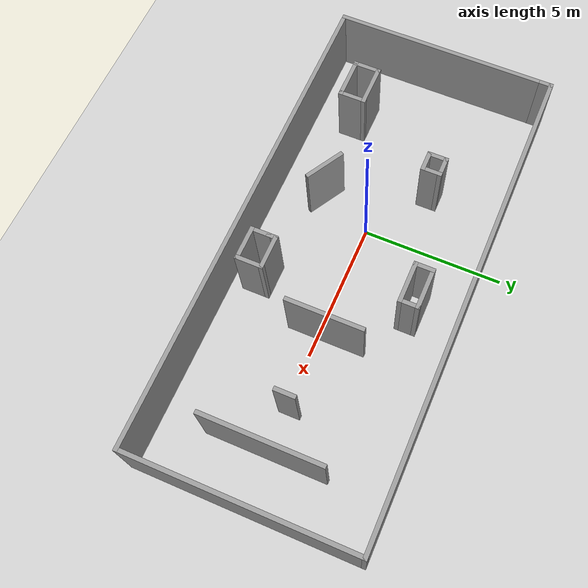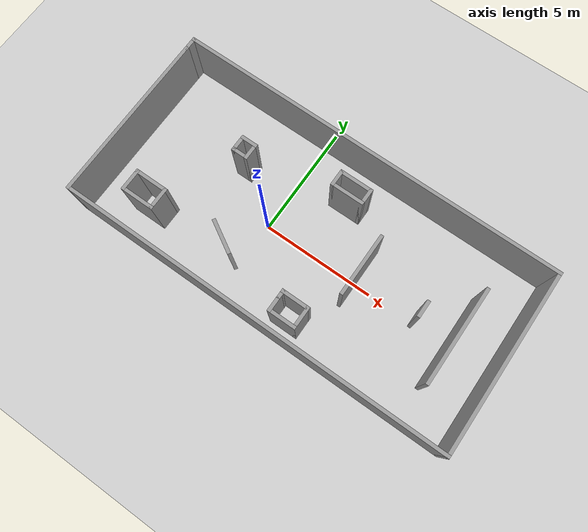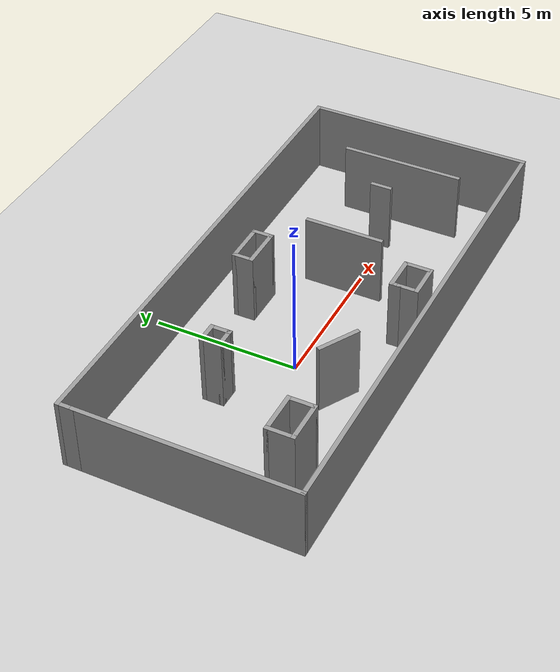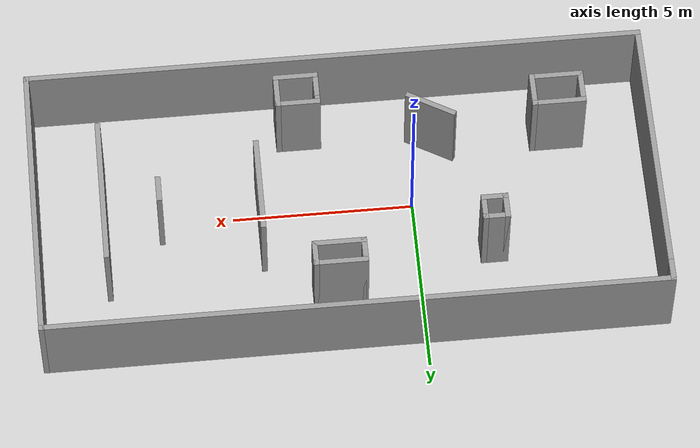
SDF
<?xml version="1.0" ?>
<sdf version="1.5">
  <world name="default">
    <!-- A global light source -->
    <include>
      <uri>model://sun</uri>
    </include>
    <!-- A ground plane -->
    <include>
      <uri>model://ground_plane</uri>
    </include>

    <physics type="ode">
      <!-- This will cap realtime factor to 0.8 -->
      <real_time_update_rate>500</real_time_update_rate>
    </physics>

    <model name='test_world'>
      <pose frame=''>1.89581 0.315639 0 0 -0 0</pose>
      <link name='Wall_11'>
        <collision name='Wall_11_Collision'>
          <geometry>
            <box>
              <size>7.5 0.15 2.5</size>
            </box>
          </geometry>
          <pose frame=''>0 0 1.25 0 -0 0</pose>
        </collision>
        <visual name='Wall_11_Visual'>
          <pose frame=''>0 0 1.25 0 -0 0</pose>
          <geometry>
            <box>
              <size>7.5 0.15 2.5</size>
            </box>
          </geometry>
          <material>
            <script>
              <uri>file://media/materials/scripts/gazebo.material</uri>
              <name>Gazebo/Grey</name>
            </script>
            <ambient>1 1 1 1</ambient>
          </material>
          <meta>
            <layer>0</layer>
          </meta>
        </visual>
        <pose frame=''>-8.55 -0.25 0 0 -0 -1.5708</pose>
      </link>
      <link name='Wall_12'>
        <collision name='Wall_12_Collision'>
          <geometry>
            <box>
              <size>17.25 0.15 2.5</size>
            </box>
          </geometry>
          <pose frame=''>0 0 1.25 0 -0 0</pose>
        </collision>
        <visual name='Wall_12_Visual'>
          <pose frame=''>0 0 1.25 0 -0 0</pose>
          <geometry>
            <box>
              <size>17.25 0.15 2.5</size>
            </box>
          </geometry>
          <material>
            <script>
              <uri>file://media/materials/scripts/gazebo.material</uri>
              <name>Gazebo/Grey</name>
            </script>
            <ambient>1 1 1 1</ambient>
          </material>
          <meta>
            <layer>0</layer>
          </meta>
        </visual>
        <pose frame=''>-0 -3.925 0 0 -0 0</pose>
      </link>
      <link name='Wall_13'>
        <collision name='Wall_13_Collision'>
          <geometry>
            <box>
              <size>8 0.15 2.5</size>
            </box>
          </geometry>
          <pose frame=''>0 0 1.25 0 -0 0</pose>
        </collision>
        <visual name='Wall_13_Visual'>
          <pose frame=''>0 0 1.25 0 -0 0</pose>
          <geometry>
            <box>
              <size>8 0.15 2.5</size>
            </box>
          </geometry>
          <material>
            <script>
              <uri>file://media/materials/scripts/gazebo.material</uri>
              <name>Gazebo/Grey</name>
            </script>
            <ambient>1 1 1 1</ambient>
          </material>
          <meta>
            <layer>0</layer>
          </meta>
        </visual>
        <pose frame=''>8.55 -0 0 0 -0 1.5708</pose>
      </link>
      <link name='Wall_14'>
        <collision name='Wall_14_Collision'>
          <geometry>
            <box>
              <size>17.25 0.15 2.5</size>
            </box>
          </geometry>
          <pose frame=''>0 0 1.25 0 -0 0</pose>
        </collision>
        <visual name='Wall_14_Visual'>
          <pose frame=''>0 0 1.25 0 -0 0</pose>
          <geometry>
            <box>
              <size>17.25 0.15 2.5</size>
            </box>
          </geometry>
          <material>
            <script>
              <uri>file://media/materials/scripts/gazebo.material</uri>
              <name>Gazebo/Grey</name>
            </script>
            <ambient>1 1 1 1</ambient>
          </material>
          <meta>
            <layer>0</layer>
          </meta>
        </visual>
        <pose frame=''>-0 3.925 0 0 -0 3.14159</pose>
      </link>
      <link name='Wall_15'>
        <collision name='Wall_15_Collision'>
          <geometry>
            <box>
              <size>0.65 0.15 2.5</size>
            </box>
          </geometry>
          <pose frame=''>0 0 1.25 0 -0 0</pose>
        </collision>
        <visual name='Wall_15_Visual'>
          <pose frame=''>0 0 1.25 0 -0 0</pose>
          <geometry>
            <box>
              <size>0.65 0.15 2.5</size>
            </box>
          </geometry>
          <material>
            <script>
              <uri>file://media/materials/scripts/gazebo.material</uri>
              <name>Gazebo/Grey</name>
            </script>
            <ambient>1 1 1 1</ambient>
          </material>
          <meta>
            <layer>0</layer>
          </meta>
        </visual>
        <pose frame=''>-8.55 3.675 0 0 -0 -1.5708</pose>
      </link>
      <link name='Wall_17'>
        <collision name='Wall_17_Collision'>
          <geometry>
            <box>
              <size>0.75 0.15 2.5</size>
            </box>
          </geometry>
          <pose frame=''>0 0 1.25 0 -0 0</pose>
        </collision>
        <visual name='Wall_17_Visual'>
          <pose frame=''>0 0 1.25 0 -0 0</pose>
          <geometry>
            <box>
              <size>0.75 0.15 2.5</size>
            </box>
          </geometry>
          <material>
            <script>
              <uri>file://media/materials/scripts/gazebo.material</uri>
              <name>Gazebo/Grey</name>
            </script>
            <ambient>1 1 1 1</ambient>
          </material>
          <meta>
            <layer>0</layer>
          </meta>
        </visual>
        <pose frame=''>-0.330539 2.30039 0 0 -0 -1.5708</pose>
      </link>
      <link name='Wall_18'>
        <collision name='Wall_18_Collision'>
          <geometry>
            <box>
              <size>1.5 0.15 2.5</size>
            </box>
          </geometry>
          <pose frame=''>0 0 1.25 0 -0 0</pose>
        </collision>
        <visual name='Wall_18_Visual'>
          <pose frame=''>0 0 1.25 0 -0 0</pose>
          <geometry>
            <box>
              <size>1.5 0.15 2.5</size>
            </box>
          </geometry>
          <material>
            <script>
              <uri>file://media/materials/scripts/gazebo.material</uri>
              <name>Gazebo/Grey</name>
            </script>
            <ambient>1 1 1 1</ambient>
          </material>
          <meta>
            <layer>0</layer>
          </meta>
        </visual>
        <pose frame=''>0.344461 2.00039 0 0 -0 0</pose>
      </link>
      <link name='Wall_19'>
        <collision name='Wall_19_Collision'>
          <geometry>
            <box>
              <size>0.75 0.15 2.5</size>
            </box>
          </geometry>
          <pose frame=''>0 0 1.25 0 -0 0</pose>
        </collision>
        <visual name='Wall_19_Visual'>
          <pose frame=''>0 0 1.25 0 -0 0</pose>
          <geometry>
            <box>
              <size>0.75 0.15 2.5</size>
            </box>
          </geometry>
          <material>
            <script>
              <uri>file://media/materials/scripts/gazebo.material</uri>
              <name>Gazebo/Grey</name>
            </script>
            <ambient>1 1 1 1</ambient>
          </material>
          <meta>
            <layer>0</layer>
          </meta>
        </visual>
        <pose frame=''>1.01946 2.30039 0 0 -0 1.5708</pose>
      </link>
      <link name='Wall_20'>
        <collision name='Wall_20_Collision'>
          <geometry>
            <box>
              <size>1.5 0.15 2.5</size>
            </box>
          </geometry>
          <pose frame=''>0 0 1.25 0 -0 0</pose>
        </collision>
        <visual name='Wall_20_Visual'>
          <pose frame=''>0 0 1.25 0 -0 0</pose>
          <geometry>
            <box>
              <size>1.5 0.15 2.5</size>
            </box>
          </geometry>
          <material>
            <script>
              <uri>file://media/materials/scripts/gazebo.material</uri>
              <name>Gazebo/Grey</name>
            </script>
            <ambient>1 1 1 1</ambient>
          </material>
          <meta>
            <layer>0</layer>
          </meta>
        </visual>
        <pose frame=''>0.344461 2.60039 0 0 -0 3.14159</pose>
      </link>
      <link name='Wall_22'>
        <collision name='Wall_22_Collision'>
          <geometry>
            <box>
              <size>0.75 0.15 2.5</size>
            </box>
          </geometry>
          <pose frame=''>0 0 1.25 0 -0 0</pose>
        </collision>
        <visual name='Wall_22_Visual'>
          <pose frame=''>0 0 1.25 0 -0 0</pose>
          <geometry>
            <box>
              <size>0.75 0.15 2.5</size>
            </box>
          </geometry>
          <material>
            <script>
              <uri>file://media/materials/scripts/gazebo.material</uri>
              <name>Gazebo/Grey</name>
            </script>
            <ambient>1 1 1 1</ambient>
          </material>
          <meta>
            <layer>0</layer>
          </meta>
        </visual>
        <pose frame=''>0.547268 -3.04625 0 0 -0 -1.5708</pose>
      </link>
      <link name='Wall_23'>
        <collision name='Wall_23_Collision'>
          <geometry>
            <box>
              <size>1.25 0.15 2.5</size>
            </box>
          </geometry>
          <pose frame=''>0 0 1.25 0 -0 0</pose>
        </collision>
        <visual name='Wall_23_Visual'>
          <pose frame=''>0 0 1.25 0 -0 0</pose>
          <geometry>
            <box>
              <size>1.25 0.15 2.5</size>
            </box>
          </geometry>
          <material>
            <script>
              <uri>file://media/materials/scripts/gazebo.material</uri>
              <name>Gazebo/Grey</name>
            </script>
            <ambient>1 1 1 1</ambient>
          </material>
          <meta>
            <layer>0</layer>
          </meta>
        </visual>
        <pose frame=''>1.09727 -3.34625 0 0 -0 0</pose>
      </link>
      <link name='Wall_24'>
        <collision name='Wall_24_Collision'>
          <geometry>
            <box>
              <size>1 0.15 2.5</size>
            </box>
          </geometry>
          <pose frame=''>0 0 1.25 0 -0 0</pose>
        </collision>
        <visual name='Wall_24_Visual'>
          <pose frame=''>0 0 1.25 0 -0 0</pose>
          <geometry>
            <box>
              <size>1 0.15 2.5</size>
            </box>
          </geometry>
          <material>
            <script>
              <uri>file://media/materials/scripts/gazebo.material</uri>
              <name>Gazebo/Grey</name>
            </script>
            <ambient>1 1 1 1</ambient>
          </material>
          <meta>
            <layer>0</layer>
          </meta>
        </visual>
        <pose frame=''>1.64727 -2.92125 0 0 -0 1.5708</pose>
      </link>
      <link name='Wall_25'>
        <collision name='Wall_25_Collision'>
          <geometry>
            <box>
              <size>1.25 0.15 2.5</size>
            </box>
          </geometry>
          <pose frame=''>0 0 1.25 0 -0 0</pose>
        </collision>
        <visual name='Wall_25_Visual'>
          <pose frame=''>0 0 1.25 0 -0 0</pose>
          <geometry>
            <box>
              <size>1.25 0.15 2.5</size>
            </box>
          </geometry>
          <material>
            <script>
              <uri>file://media/materials/scripts/gazebo.material</uri>
              <name>Gazebo/Grey</name>
            </script>
            <ambient>1 1 1 1</ambient>
          </material>
          <meta>
            <layer>0</layer>
          </meta>
        </visual>
        <pose frame=''>1.09727 -2.49625 0 0 -0 3.14159</pose>
      </link>
      <link name='Wall_26'>
        <collision name='Wall_26_Collision'>
          <geometry>
            <box>
              <size>0.4 0.15 2.5</size>
            </box>
          </geometry>
          <pose frame=''>0 0 1.25 0 -0 0</pose>
        </collision>
        <visual name='Wall_26_Visual'>
          <pose frame=''>0 0 1.25 0 -0 0</pose>
          <geometry>
            <box>
              <size>0.4 0.15 2.5</size>
            </box>
          </geometry>
          <material>
            <script>
              <uri>file://media/materials/scripts/gazebo.material</uri>
              <name>Gazebo/Grey</name>
            </script>
            <ambient>1 1 1 1</ambient>
          </material>
          <meta>
            <layer>0</layer>
          </meta>
        </visual>
        <pose frame=''>0.547268 -2.62125 0 0 -0 -1.5708</pose>
      </link>
      <link name='Wall_28'>
        <collision name='Wall_28_Collision'>
          <geometry>
            <box>
              <size>1 0.15 2.5</size>
            </box>
          </geometry>
          <pose frame=''>0 0 1.25 0 -0 0</pose>
        </collision>
        <visual name='Wall_28_Visual'>
          <pose frame=''>0 0 1.25 0 -0 0</pose>
          <geometry>
            <box>
              <size>1 0.15 2.5</size>
            </box>
          </geometry>
          <material>
            <script>
              <uri>file://media/materials/scripts/gazebo.material</uri>
              <name>Gazebo/Grey</name>
            </script>
            <ambient>1 1 1 1</ambient>
          </material>
          <meta>
            <layer>0</layer>
          </meta>
        </visual>
        <pose frame=''>-6.79439 -2.32004 0 0 -0 -1.5708</pose>
      </link>
      <link name='Wall_29'>
        <collision name='Wall_29_Collision'>
          <geometry>
            <box>
              <size>1.5 0.15 2.5</size>
            </box>
          </geometry>
          <pose frame=''>0 0 1.25 0 -0 0</pose>
        </collision>
        <visual name='Wall_29_Visual'>
          <pose frame=''>0 0 1.25 0 -0 0</pose>
          <geometry>
            <box>
              <size>1.5 0.15 2.5</size>
            </box>
          </geometry>
          <material>
            <script>
              <uri>file://media/materials/scripts/gazebo.material</uri>
              <name>Gazebo/Grey</name>
            </script>
            <ambient>1 1 1 1</ambient>
          </material>
          <meta>
            <layer>0</layer>
          </meta>
        </visual>
        <pose frame=''>-6.11939 -2.74504 0 0 -0 0</pose>
      </link>
      <link name='Wall_3'>
        <collision name='Wall_3_Collision'>
          <geometry>
            <box>
              <size>0.75 0.15 2.5</size>
            </box>
          </geometry>
          <pose frame=''>0 0 1.25 0 -0 0</pose>
        </collision>
        <visual name='Wall_3_Visual'>
          <pose frame=''>0 0 1.25 0 -0 0</pose>
          <geometry>
            <box>
              <size>0.75 0.15 2.5</size>
            </box>
          </geometry>
          <material>
            <script>
              <uri>file://media/materials/scripts/gazebo.material</uri>
              <name>Gazebo/Grey</name>
            </script>
            <ambient>1 1 1 1</ambient>
          </material>
          <meta>
            <layer>0</layer>
          </meta>
        </visual>
        <pose frame=''>-4.30581 1.27436 0 0 -0 -1.5708</pose>
      </link>
      <link name='Wall_30'>
        <collision name='Wall_30_Collision'>
          <geometry>
            <box>
              <size>1 0.15 2.5</size>
            </box>
          </geometry>
          <pose frame=''>0 0 1.25 0 -0 0</pose>
        </collision>
        <visual name='Wall_30_Visual'>
          <pose frame=''>0 0 1.25 0 -0 0</pose>
          <geometry>
            <box>
              <size>1 0.15 2.5</size>
            </box>
          </geometry>
          <material>
            <script>
              <uri>file://media/materials/scripts/gazebo.material</uri>
              <name>Gazebo/Grey</name>
            </script>
            <ambient>1 1 1 1</ambient>
          </material>
          <meta>
            <layer>0</layer>
          </meta>
        </visual>
        <pose frame=''>-5.44439 -2.32004 0 0 -0 1.5708</pose>
      </link>
      <link name='Wall_31'>
        <collision name='Wall_31_Collision'>
          <geometry>
            <box>
              <size>1.5 0.15 2.5</size>
            </box>
          </geometry>
          <pose frame=''>0 0 1.25 0 -0 0</pose>
        </collision>
        <visual name='Wall_31_Visual'>
          <pose frame=''>0 0 1.25 0 -0 0</pose>
          <geometry>
            <box>
              <size>1.5 0.15 2.5</size>
            </box>
          </geometry>
          <material>
            <script>
              <uri>file://media/materials/scripts/gazebo.material</uri>
              <name>Gazebo/Grey</name>
            </script>
            <ambient>1 1 1 1</ambient>
          </material>
          <meta>
            <layer>0</layer>
          </meta>
        </visual>
        <pose frame=''>-6.11939 -1.89504 0 0 -0 3.14159</pose>
      </link>
      <link name='Wall_33'>
        <collision name='Wall_33_Collision'>
          <geometry>
            <box>
              <size>0.75 0.15 2.5</size>
            </box>
          </geometry>
          <pose frame=''>0 0 1.25 0 -0 0</pose>
        </collision>
        <visual name='Wall_33_Visual'>
          <pose frame=''>0 0 1.25 0 -0 0</pose>
          <geometry>
            <box>
              <size>0.75 0.15 2.5</size>
            </box>
          </geometry>
          <material>
            <script>
              <uri>file://media/materials/scripts/gazebo.material</uri>
              <name>Gazebo/Grey</name>
            </script>
            <ambient>1 1 1 1</ambient>
          </material>
          <meta>
            <layer>0</layer>
          </meta>
        </visual>
        <pose frame=''>5.1225 -0.093624 0 0 -0 -1.5708</pose>
      </link>
      <link name='Wall_37'>
        <collision name='Wall_37_Collision'>
          <geometry>
            <box>
              <size>4.25 0.15 2.5</size>
            </box>
          </geometry>
          <pose frame=''>0 0 1.25 0 -0 0</pose>
        </collision>
        <visual name='Wall_37_Visual'>
          <pose frame=''>0 0 1.25 0 -0 0</pose>
          <geometry>
            <box>
              <size>4.25 0.15 2.5</size>
            </box>
          </geometry>
          <material>
            <script>
              <uri>file://media/materials/scripts/gazebo.material</uri>
              <name>Gazebo/Grey</name>
            </script>
            <ambient>1 1 1 1</ambient>
          </material>
          <meta>
            <layer>0</layer>
          </meta>
        </visual>
        <pose frame=''>6.66531 -0.194412 0 0 -0 -1.5708</pose>
      </link>
      <link name='Wall_39'>
        <collision name='Wall_39_Collision'>
          <geometry>
            <box>
              <size>2.75 0.15 2.5</size>
            </box>
          </geometry>
          <pose frame=''>0 0 1.25 0 -0 0</pose>
        </collision>
        <visual name='Wall_39_Visual'>
          <pose frame=''>0 0 1.25 0 -0 0</pose>
          <geometry>
            <box>
              <size>2.75 0.15 2.5</size>
            </box>
          </geometry>
          <material>
            <script>
              <uri>file://media/materials/scripts/gazebo.material</uri>
              <name>Gazebo/Grey</name>
            </script>
            <ambient>1 1 1 1</ambient>
          </material>
          <meta>
            <layer>0</layer>
          </meta>
        </visual>
        <pose frame=''>2.35608 -0.003016 0 0 -0 -1.5708</pose>
      </link>
      <link name='Wall_4'>
        <collision name='Wall_4_Collision'>
          <geometry>
            <box>
              <size>0.75 0.15 2.5</size>
            </box>
          </geometry>
          <pose frame=''>0 0 1.25 0 -0 0</pose>
        </collision>
        <visual name='Wall_4_Visual'>
          <pose frame=''>0 0 1.25 0 -0 0</pose>
          <geometry>
            <box>
              <size>0.75 0.15 2.5</size>
            </box>
          </geometry>
          <material>
            <script>
              <uri>file://media/materials/scripts/gazebo.material</uri>
              <name>Gazebo/Grey</name>
            </script>
            <ambient>1 1 1 1</ambient>
          </material>
          <meta>
            <layer>0</layer>
          </meta>
        </visual>
        <pose frame=''>-4.00581 0.97436 0 0 -0 0</pose>
      </link>
      <link name='Wall_41'>
        <collision name='Wall_41_Collision'>
          <geometry>
            <box>
              <size>1.5 0.15 2.5</size>
            </box>
          </geometry>
          <pose frame=''>0 0 1.25 0 -0 0</pose>
        </collision>
        <visual name='Wall_41_Visual'>
          <pose frame=''>0 0 1.25 0 -0 0</pose>
          <geometry>
            <box>
              <size>1.5 0.15 2.5</size>
            </box>
          </geometry>
          <material>
            <script>
              <uri>file://media/materials/scripts/gazebo.material</uri>
              <name>Gazebo/Grey</name>
            </script>
            <ambient>1 1 1 1</ambient>
          </material>
          <meta>
            <layer>0</layer>
          </meta>
        </visual>
        <pose frame=''>-2.56559 -2.12614 0 0 -0 -0.523599</pose>
      </link>
      <link name='Wall_5'>
        <collision name='Wall_5_Collision'>
          <geometry>
            <box>
              <size>0.75 0.15 2.5</size>
            </box>
          </geometry>
          <pose frame=''>0 0 1.25 0 -0 0</pose>
        </collision>
        <visual name='Wall_5_Visual'>
          <pose frame=''>0 0 1.25 0 -0 0</pose>
          <geometry>
            <box>
              <size>0.75 0.15 2.5</size>
            </box>
          </geometry>
          <material>
            <script>
              <uri>file://media/materials/scripts/gazebo.material</uri>
              <name>Gazebo/Grey</name>
            </script>
            <ambient>1 1 1 1</ambient>
          </material>
          <meta>
            <layer>0</layer>
          </meta>
        </visual>
        <pose frame=''>-3.70581 1.27436 0 0 -0 1.5708</pose>
      </link>
      <link name='Wall_6'>
        <collision name='Wall_6_Collision'>
          <geometry>
            <box>
              <size>0.75 0.15 2.5</size>
            </box>
          </geometry>
          <pose frame=''>0 0 1.25 0 -0 0</pose>
        </collision>
        <visual name='Wall_6_Visual'>
          <pose frame=''>0 0 1.25 0 -0 0</pose>
          <geometry>
            <box>
              <size>0.75 0.15 2.5</size>
            </box>
          </geometry>
          <material>
            <script>
              <uri>file://media/materials/scripts/gazebo.material</uri>
              <name>Gazebo/Grey</name>
            </script>
            <ambient>1 1 1 1</ambient>
          </material>
          <meta>
            <layer>0</layer>
          </meta>
        </visual>
        <pose frame=''>-4.00581 1.57436 0 0 -0 3.14159</pose>
      </link>
      <static>1</static>
    </model>

  </world>
</sdf>
